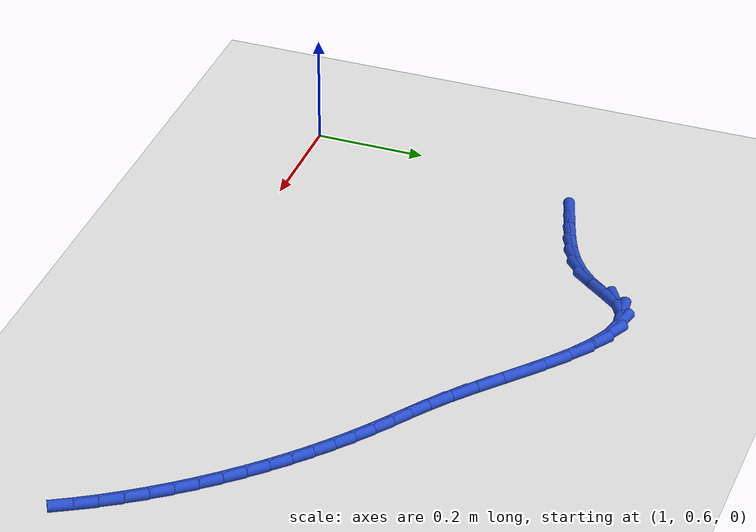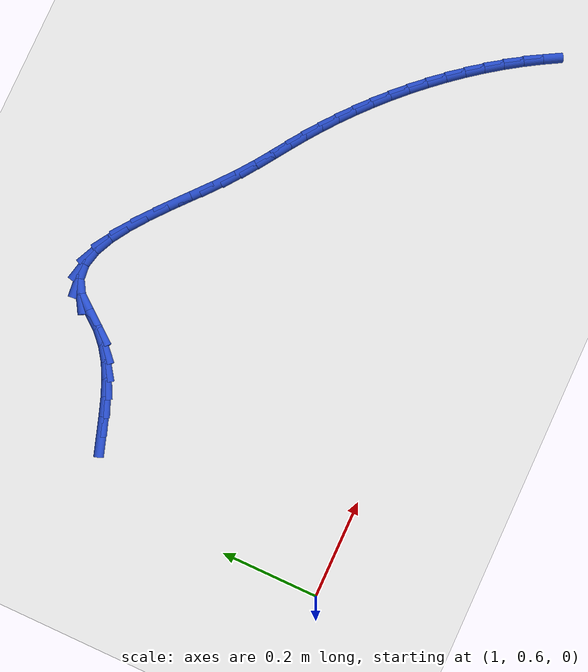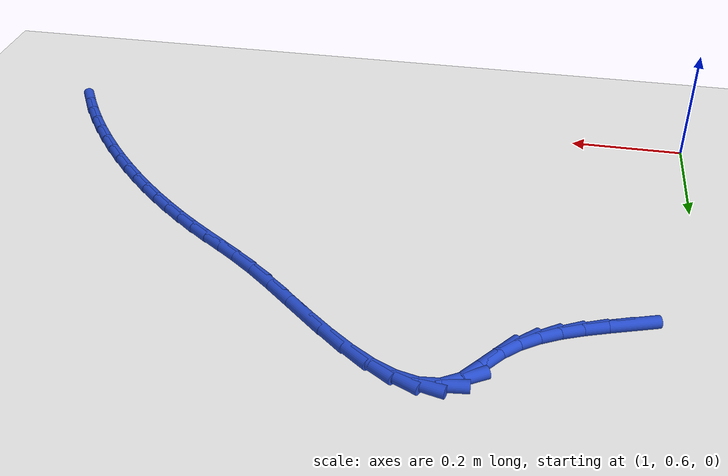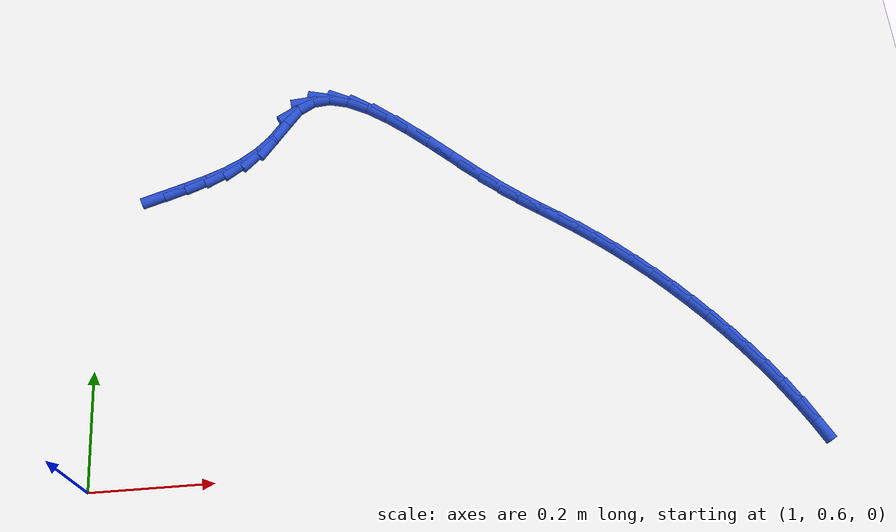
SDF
<sdf version="1.6">
 <world name="default">
  <model name="ground_plane">
   <static>1</static>
   <link name="link">
    <collision name="collision">
     <geometry><plane><normal>0 0 1</normal><size>100 100</size></plane></geometry>
     <surface><friction><ode><mu>100</mu><mu2>50</mu2></ode></friction></surface>
    </collision>
    <visual name="visual">
     <cast_shadows>0</cast_shadows>
     <geometry><plane><normal>0 0 1</normal><size>100 100</size></plane></geometry>
     <material>
      <script><uri>file://media/materials/scripts/gazebo.material</uri><name>Gazebo/WhiteGlow</name></script>
     </material>
    </visual>
   </link>
  </model>
  <model name="line">
   <link name="link_51">
    <pose>1.10742696149526 1.1137154288771396 0.01 0 1.57 0.3155936310310976</pose>
    <collision name="collision">
     <geometry><cylinder><radius>0.01</radius><length>0.08</length></cylinder></geometry>
    </collision>
    <visual name="visual">
     <material>
      <script><name>Gazebo/Blue</name><uri>file://media/materials/scripts/gazebo.material</uri></script>
     </material>
     <geometry><cylinder><radius>0.01</radius><length>0.08</length></cylinder></geometry>
    </visual>
   </link>
   <link name="link_52">
    <pose>1.1453669759045038 1.1261030800397562 0.01 0 1.57 0.33508584410469416</pose>
    <collision name="collision">
     <geometry><cylinder><radius>0.01</radius><length>0.08</length></cylinder></geometry>
    </collision>
    <visual name="visual">
     <material>
      <script><name>Gazebo/Blue</name><uri>file://media/materials/scripts/gazebo.material</uri></script>
     </material>
     <geometry><cylinder><radius>0.01</radius><length>0.08</length></cylinder></geometry>
    </visual>
   </link>
   <link name="link_53">
    <pose>1.1807427110360598 1.1384215253172485 0.01 0 1.57 0.3885028176982189</pose>
    <collision name="collision">
     <geometry><cylinder><radius>0.01</radius><length>0.08</length></cylinder></geometry>
    </collision>
    <visual name="visual">
     <material>
      <script><name>Gazebo/Blue</name><uri>file://media/materials/scripts/gazebo.material</uri></script>
     </material>
     <geometry><cylinder><radius>0.01</radius><length>0.08</length></cylinder></geometry>
    </visual>
   </link>
   <link name="link_54">
    <pose>1.2136151971281988 1.1518764256808025 0.01 0 1.57 0.4788277985845031</pose>
    <collision name="collision">
     <geometry><cylinder><radius>0.01</radius><length>0.08</length></cylinder></geometry>
    </collision>
    <visual name="visual">
     <material>
      <script><name>Gazebo/Blue</name><uri>file://media/materials/scripts/gazebo.material</uri></script>
     </material>
     <geometry><cylinder><radius>0.01</radius><length>0.08</length></cylinder></geometry>
    </visual>
   </link>
   <link name="link_55">
    <pose>1.2440454644191927 1.1676734421016062 0.01 0 1.57 0.6037638590888188</pose>
    <collision name="collision">
     <geometry><cylinder><radius>0.01</radius><length>0.08</length></cylinder></geometry>
    </collision>
    <visual name="visual">
     <material>
      <script><name>Gazebo/Blue</name><uri>file://media/materials/scripts/gazebo.material</uri></script>
     </material>
     <geometry><cylinder><radius>0.01</radius><length>0.08</length></cylinder></geometry>
    </visual>
   </link>
   <link name="link_56">
    <pose>1.272094543147313 1.1870182355508465 0.01 0 1.57 0.7526829251339359</pose>
    <collision name="collision">
     <geometry><cylinder><radius>0.01</radius><length>0.08</length></cylinder></geometry>
    </collision>
    <visual name="visual">
     <material>
      <script><name>Gazebo/Blue</name><uri>file://media/materials/scripts/gazebo.material</uri></script>
     </material>
     <geometry><cylinder><radius>0.01</radius><length>0.08</length></cylinder></geometry>
    </visual>
   </link>
   <link name="link_57">
    <pose>1.2978234635508303 1.2111164669997105 0.01 0 1.57 0.9059553250589817</pose>
    <collision name="collision">
     <geometry><cylinder><radius>0.01</radius><length>0.08</length></cylinder></geometry>
    </collision>
    <visual name="visual">
     <material>
      <script><name>Gazebo/Blue</name><uri>file://media/materials/scripts/gazebo.material</uri></script>
     </material>
     <geometry><cylinder><radius>0.01</radius><length>0.08</length></cylinder></geometry>
    </visual>
   </link>
   <link name="link_58">
    <pose>1.3213170246809662 1.2410869049250188 0.01 0 1.57 0.8987611843049171</pose>
    <collision name="collision">
     <geometry><cylinder><radius>0.01</radius><length>0.08</length></cylinder></geometry>
    </collision>
    <visual name="visual">
     <material>
      <script><name>Gazebo/Blue</name><uri>file://media/materials/scripts/gazebo.material</uri></script>
     </material>
     <geometry><cylinder><radius>0.01</radius><length>0.08</length></cylinder></geometry>
    </visual>
   </link>
   <link name="link_59">
    <pose>1.344722086734106 1.2705060652446905 0.01 0 1.57 0.538504190623126</pose>
    <collision name="collision">
     <geometry><cylinder><radius>0.01</radius><length>0.08</length></cylinder></geometry>
    </collision>
    <visual name="visual">
     <material>
      <script><name>Gazebo/Blue</name><uri>file://media/materials/scripts/gazebo.material</uri></script>
     </material>
     <geometry><cylinder><radius>0.01</radius><length>0.08</length></cylinder></geometry>
    </visual>
   </link>
   <link name="link_60">
    <pose>1.371756844949033 1.2866565802121317 0.01 0 1.57 0.1029266934992605</pose>
    <collision name="collision">
     <geometry><cylinder><radius>0.01</radius><length>0.08</length></cylinder></geometry>
    </collision>
    <visual name="visual">
     <material>
      <script><name>Gazebo/Blue</name><uri>file://media/materials/scripts/gazebo.material</uri></script>
     </material>
     <geometry><cylinder><radius>0.01</radius><length>0.08</length></cylinder></geometry>
    </visual>
   </link>
   <link name="link_61">
    <pose>1.4022825156770342 1.2898096288036562 0.01 0 1.57 -0.23081224614955703</pose>
    <collision name="collision">
     <geometry><cylinder><radius>0.01</radius><length>0.08</length></cylinder></geometry>
    </collision>
    <visual name="visual">
     <material>
      <script><name>Gazebo/Blue</name><uri>file://media/materials/scripts/gazebo.material</uri></script>
     </material>
     <geometry><cylinder><radius>0.01</radius><length>0.08</length></cylinder></geometry>
    </visual>
   </link>
   <link name="link_62">
    <pose>1.4356498783897376 1.2819682885050008 0.01 0 1.57 -0.44211050993414597</pose>
    <collision name="collision">
     <geometry><cylinder><radius>0.01</radius><length>0.08</length></cylinder></geometry>
    </collision>
    <visual name="visual">
     <material>
      <script><name>Gazebo/Blue</name><uri>file://media/materials/scripts/gazebo.material</uri></script>
     </material>
     <geometry><cylinder><radius>0.01</radius><length>0.08</length></cylinder></geometry>
    </visual>
   </link>
   <link name="link_63">
    <pose>1.4712097125587704 1.2651356368019018 0.01 0 1.57 -0.5707442001541588</pose>
    <collision name="collision">
     <geometry><cylinder><radius>0.01</radius><length>0.08</length></cylinder></geometry>
    </collision>
    <visual name="visual">
     <material>
      <script><name>Gazebo/Blue</name><uri>file://media/materials/scripts/gazebo.material</uri></script>
     </material>
     <geometry><cylinder><radius>0.01</radius><length>0.08</length></cylinder></geometry>
    </visual>
   </link>
   <link name="link_64">
    <pose>1.508312797655761 1.2413147511800955 0.01 0 1.57 -0.6486721518860892</pose>
    <collision name="collision">
     <geometry><cylinder><radius>0.01</radius><length>0.08</length></cylinder></geometry>
    </collision>
    <visual name="visual">
     <material>
      <script><name>Gazebo/Blue</name><uri>file://media/materials/scripts/gazebo.material</uri></script>
     </material>
     <geometry><cylinder><radius>0.01</radius><length>0.08</length></cylinder></geometry>
    </visual>
   </link>
   <link name="link_65">
    <pose>1.5463099131523372 1.212508709125319 0.01 0 1.57 -0.6935000931587936</pose>
    <collision name="collision">
     <geometry><cylinder><radius>0.01</radius><length>0.08</length></cylinder></geometry>
    </collision>
    <visual name="visual">
     <material>
      <script><name>Gazebo/Blue</name><uri>file://media/materials/scripts/gazebo.material</uri></script>
     </material>
     <geometry><cylinder><radius>0.01</radius><length>0.08</length></cylinder></geometry>
    </visual>
   </link>
   <link name="link_66">
    <pose>1.5845518385201265 1.1807205881233078 0.01 0 1.57 -0.7137073662212106</pose>
    <collision name="collision">
     <geometry><cylinder><radius>0.01</radius><length>0.08</length></cylinder></geometry>
    </collision>
    <visual name="visual">
     <material>
      <script><name>Gazebo/Blue</name><uri>file://media/materials/scripts/gazebo.material</uri></script>
     </material>
     <geometry><cylinder><radius>0.01</radius><length>0.08</length></cylinder></geometry>
    </visual>
   </link>
   <link name="link_67">
    <pose>1.6223893532307565 1.147953465659799 0.01 0 1.57 -0.7119704701663202</pose>
    <collision name="collision">
     <geometry><cylinder><radius>0.01</radius><length>0.08</length></cylinder></geometry>
    </collision>
    <visual name="visual">
     <material>
      <script><name>Gazebo/Blue</name><uri>file://media/materials/scripts/gazebo.material</uri></script>
     </material>
     <geometry><cylinder><radius>0.01</radius><length>0.08</length></cylinder></geometry>
    </visual>
   </link>
   <link name="link_68">
    <pose>1.6591732367558554 1.116210419220529 0.01 0 1.57 -0.6860928679042951</pose>
    <collision name="collision">
     <geometry><cylinder><radius>0.01</radius><length>0.08</length></cylinder></geometry>
    </collision>
    <visual name="visual">
     <material>
      <script><name>Gazebo/Blue</name><uri>file://media/materials/scripts/gazebo.material</uri></script>
     </material>
     <geometry><cylinder><radius>0.01</radius><length>0.08</length></cylinder></geometry>
    </visual>
   </link>
   <link name="link_69">
    <pose>1.6942580016570266 1.0874834138759824 0.01 0 1.57 -0.6434156469643703</pose>
    <collision name="collision">
     <geometry><cylinder><radius>0.01</radius><length>0.08</length></cylinder></geometry>
    </collision>
    <visual name="visual">
     <material>
      <script><name>Gazebo/Blue</name><uri>file://media/materials/scripts/gazebo.material</uri></script>
     </material>
     <geometry><cylinder><radius>0.01</radius><length>0.08</length></cylinder></geometry>
    </visual>
   </link>
   <link name="link_70">
    <pose>1.72737166648711 1.0626525867737122 0.01 0 1.57 -0.6109095546878873</pose>
    <collision name="collision">
     <geometry><cylinder><radius>0.01</radius><length>0.08</length></cylinder></geometry>
    </collision>
    <visual name="visual">
     <material>
      <script><name>Gazebo/Blue</name><uri>file://media/materials/scripts/gazebo.material</uri></script>
     </material>
     <geometry><cylinder><radius>0.01</radius><length>0.08</length></cylinder></geometry>
    </visual>
   </link>
   <link name="link_71">
    <pose>1.7589289924393543 1.0405538250053556 0.01 0 1.57 -0.5975692915439907</pose>
    <collision name="collision">
     <geometry><cylinder><radius>0.01</radius><length>0.08</length></cylinder></geometry>
    </collision>
    <visual name="visual">
     <material>
      <script><name>Gazebo/Blue</name><uri>file://media/materials/scripts/gazebo.material</uri></script>
     </material>
     <geometry><cylinder><radius>0.01</radius><length>0.08</length></cylinder></geometry>
    </visual>
   </link>
   <link name="link_72">
    <pose>1.7894185023409064 1.0198034469109531 0.01 0 1.57 -0.6073176363308823</pose>
    <collision name="collision">
     <geometry><cylinder><radius>0.01</radius><length>0.08</length></cylinder></geometry>
    </collision>
    <visual name="visual">
     <material>
      <script><name>Gazebo/Blue</name><uri>file://media/materials/scripts/gazebo.material</uri></script>
     </material>
     <geometry><cylinder><radius>0.01</radius><length>0.08</length></cylinder></geometry>
    </visual>
   </link>
   <link name="link_73">
    <pose>1.8193286851291117 0.9990178541445405 0.01 0 1.57 -0.6356355026045349</pose>
    <collision name="collision">
     <geometry><cylinder><radius>0.01</radius><length>0.08</length></cylinder></geometry>
    </collision>
    <visual name="visual">
     <material>
      <script><name>Gazebo/Blue</name><uri>file://media/materials/scripts/gazebo.material</uri></script>
     </material>
     <geometry><cylinder><radius>0.01</radius><length>0.08</length></cylinder></geometry>
    </visual>
   </link>
   <link name="link_74">
    <pose>1.8490293293869633 0.9771052588897906 0.01 0 1.57 -0.6665084572637888</pose>
    <collision name="collision">
     <geometry><cylinder><radius>0.01</radius><length>0.08</length></cylinder></geometry>
    </collision>
    <visual name="visual">
     <material>
      <script><name>Gazebo/Blue</name><uri>file://media/materials/scripts/gazebo.material</uri></script>
     </material>
     <geometry><cylinder><radius>0.01</radius><length>0.08</length></cylinder></geometry>
    </visual>
   </link>
   <link name="link_75">
    <pose>1.8785054861832955 0.9539197041864924 0.01 0 1.57 -0.697042996206371</pose>
    <collision name="collision">
     <geometry><cylinder><radius>0.01</radius><length>0.08</length></cylinder></geometry>
    </collision>
    <visual name="visual">
     <material>
      <script><name>Gazebo/Blue</name><uri>file://media/materials/scripts/gazebo.material</uri></script>
     </material>
     <geometry><cylinder><radius>0.01</radius><length>0.08</length></cylinder></geometry>
    </visual>
   </link>
   <link name="link_76">
    <pose>1.9076643957813002 0.9295065215716769 0.01 0 1.57 -0.7274364860579178</pose>
    <collision name="collision">
     <geometry><cylinder><radius>0.01</radius><length>0.08</length></cylinder></geometry>
    </collision>
    <visual name="visual">
     <material>
      <script><name>Gazebo/Blue</name><uri>file://media/materials/scripts/gazebo.material</uri></script>
     </material>
     <geometry><cylinder><radius>0.01</radius><length>0.08</length></cylinder></geometry>
    </visual>
   </link>
   <link name="link_77">
    <pose>1.9364132984441667 0.9039110425823745 0.01 0 1.57 -0.757872718635888</pose>
    <collision name="collision">
     <geometry><cylinder><radius>0.01</radius><length>0.08</length></cylinder></geometry>
    </collision>
    <visual name="visual">
     <material>
      <script><name>Gazebo/Blue</name><uri>file://media/materials/scripts/gazebo.material</uri></script>
     </material>
     <geometry><cylinder><radius>0.01</radius><length>0.08</length></cylinder></geometry>
    </visual>
   </link>
   <link name="link_78">
    <pose>1.9646594344350876 0.8771785987556159 0.01 0 1.57 -0.7885251207527355</pose>
    <collision name="collision">
     <geometry><cylinder><radius>0.01</radius><length>0.08</length></cylinder></geometry>
    </collision>
    <visual name="visual">
     <material>
      <script><name>Gazebo/Blue</name><uri>file://media/materials/scripts/gazebo.material</uri></script>
     </material>
     <geometry><cylinder><radius>0.01</radius><length>0.08</length></cylinder></geometry>
    </visual>
   </link>
   <link name="link_79">
    <pose>1.9923100440172534 0.8493545216284311 0.01 0 1.57 -0.8195593823646083</pose>
    <collision name="collision">
     <geometry><cylinder><radius>0.01</radius><length>0.08</length></cylinder></geometry>
    </collision>
    <visual name="visual">
     <material>
      <script><name>Gazebo/Blue</name><uri>file://media/materials/scripts/gazebo.material</uri></script>
     </material>
     <geometry><cylinder><radius>0.01</radius><length>0.08</length></cylinder></geometry>
    </visual>
   </link>
   <link name="link_80">
    <pose>2.019272367453855 0.8204841427378515 0.01 0 1.57 -0.8511355751033645</pose>
    <collision name="collision">
     <geometry><cylinder><radius>0.01</radius><length>0.08</length></cylinder></geometry>
    </collision>
    <visual name="visual">
     <material>
      <script><name>Gazebo/Blue</name><uri>file://media/materials/scripts/gazebo.material</uri></script>
     </material>
     <geometry><cylinder><radius>0.01</radius><length>0.08</length></cylinder></geometry>
    </visual>
   </link>
   <link name="link_81">
    <pose>2.0454536450080836 0.7906127936209075 0.01 0 1.57 -0.8834098047155189</pose>
    <collision name="collision">
     <geometry><cylinder><radius>0.01</radius><length>0.08</length></cylinder></geometry>
    </collision>
    <visual name="visual">
     <material>
      <script><name>Gazebo/Blue</name><uri>file://media/materials/scripts/gazebo.material</uri></script>
     </material>
     <geometry><cylinder><radius>0.01</radius><length>0.08</length></cylinder></geometry>
    </visual>
   </link>
   <link name="link_82">
    <pose>2.070761116943131 0.759785805814629 0.01 0 1.57 -0.9165354142175496</pose>
    <collision name="collision">
     <geometry><cylinder><radius>0.01</radius><length>0.08</length></cylinder></geometry>
    </collision>
    <visual name="visual">
     <material>
      <script><name>Gazebo/Blue</name><uri>file://media/materials/scripts/gazebo.material</uri></script>
     </material>
     <geometry><cylinder><radius>0.01</radius><length>0.08</length></cylinder></geometry>
    </visual>
   </link>
   <link name="link_83">
    <pose>2.095102023522187 0.7280485108560476 0.01 0 1.57 -0.9506485974878088</pose>
    <collision name="collision">
     <geometry><cylinder><radius>0.01</radius><length>0.08</length></cylinder></geometry>
    </collision>
    <visual name="visual">
     <material>
      <script><name>Gazebo/Blue</name><uri>file://media/materials/scripts/gazebo.material</uri></script>
     </material>
     <geometry><cylinder><radius>0.01</radius><length>0.08</length></cylinder></geometry>
    </visual>
   </link>
   <link name="link_84">
    <pose>2.118384052148855 0.6954466572381055 0.01 0 1.57 -0.9856612183004019</pose>
    <collision name="collision">
     <geometry><cylinder><radius>0.01</radius><length>0.08</length></cylinder></geometry>
    </collision>
    <visual name="visual">
     <material>
      <script><name>Gazebo/Blue</name><uri>file://media/materials/scripts/gazebo.material</uri></script>
     </material>
     <geometry><cylinder><radius>0.01</radius><length>0.08</length></cylinder></geometry>
    </visual>
   </link>
   <link name="link_85">
    <pose>2.140521962693448 0.6620325884890712 0.01 0 1.57 -1.0215367578809775</pose>
    <collision name="collision">
     <geometry><cylinder><radius>0.01</radius><length>0.08</length></cylinder></geometry>
    </collision>
    <visual name="visual">
     <material>
      <script><name>Gazebo/Blue</name><uri>file://media/materials/scripts/gazebo.material</uri></script>
     </material>
     <geometry><cylinder><radius>0.01</radius><length>0.08</length></cylinder></geometry>
    </visual>
   </link>
   <link name="link_86">
    <pose>2.161436161618046 0.6278639135521948 0.01 0 1.57 -1.0584244458451224</pose>
    <collision name="collision">
     <geometry><cylinder><radius>0.01</radius><length>0.08</length></cylinder></geometry>
    </collision>
    <visual name="visual">
     <material>
      <script><name>Gazebo/Blue</name><uri>file://media/materials/scripts/gazebo.material</uri></script>
     </material>
     <geometry><cylinder><radius>0.01</radius><length>0.08</length></cylinder></geometry>
    </visual>
   </link>
  </model>
 </world>
</sdf>
